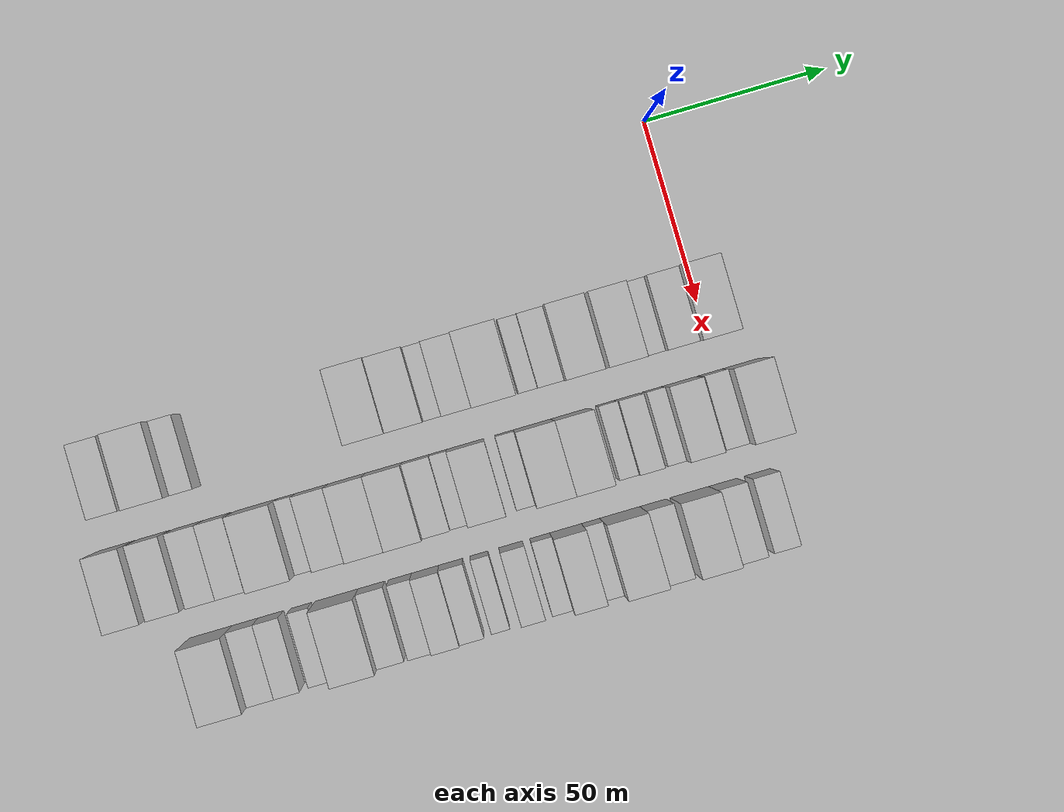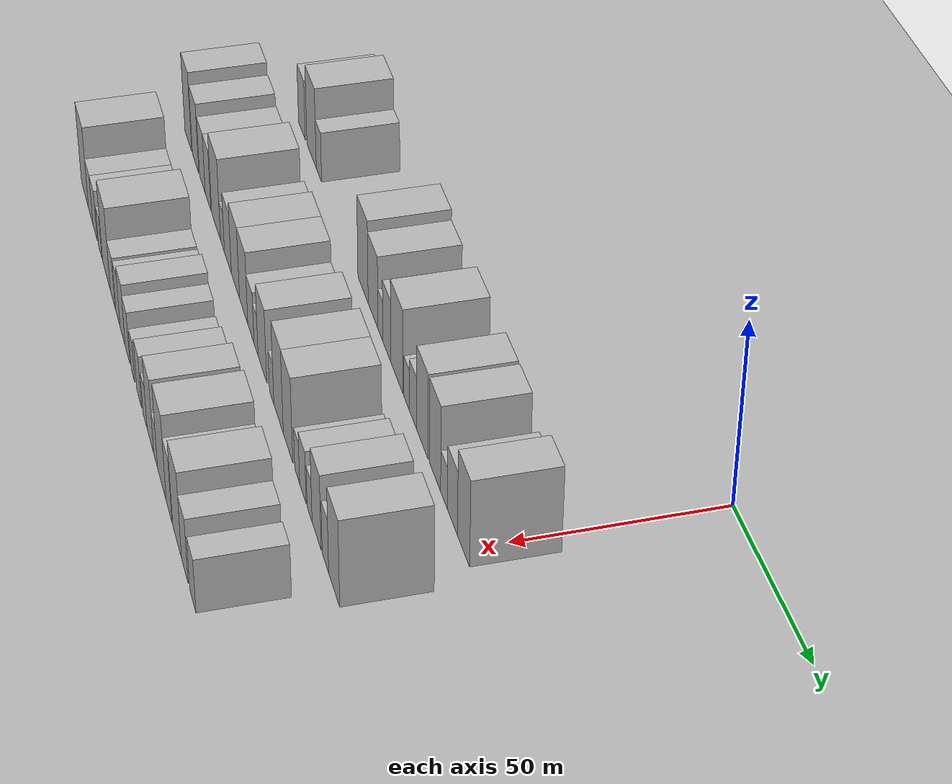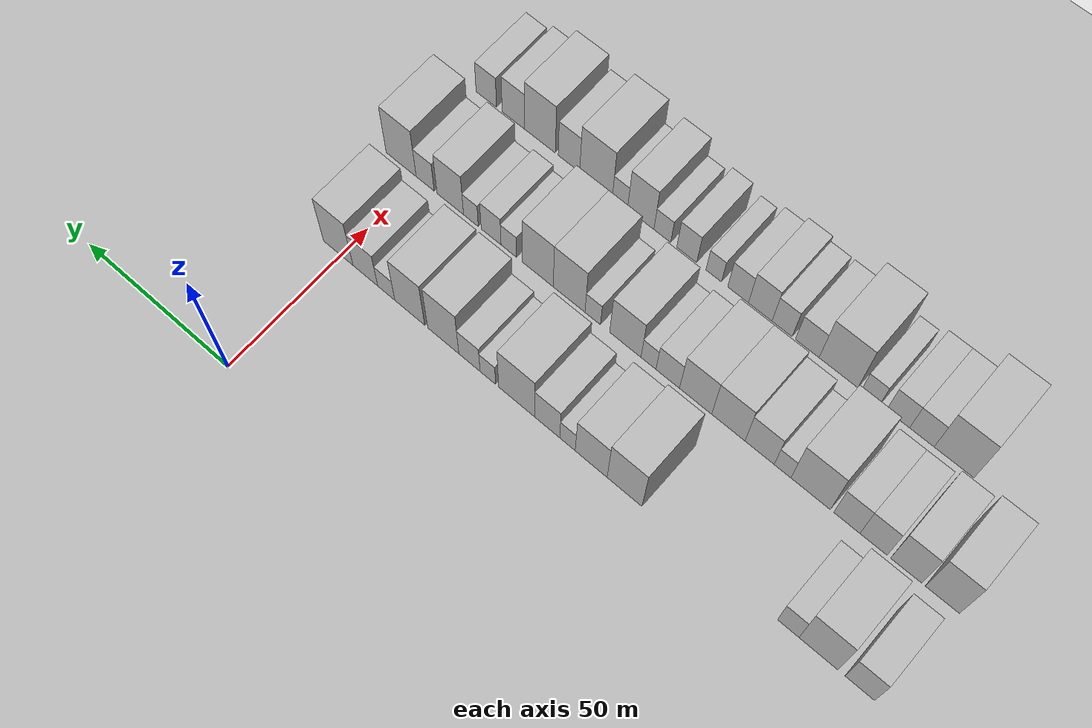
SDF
<sdf version="1.6">
 <world name="default">
  <include><name>ground_plane_1</name><uri>model://HANNAS_ground_plane</uri></include>
  <include>
   <name>ground_plane_2</name>
   <uri>model://HANNAS_ground_plane</uri>
   <pose>100 0 0  0 0 0</pose>
  </include>
  <model name="building_22">
   <static>1</static>
   <pose>50.0000 -164.0392 0 0.000000 0.000000 0.000000</pose>
   <link name="link">
    <pose>0 0 9.00 0 0 0</pose>
    <collision name="collision"><geometry><box><size>20.0000 8.3828 18.0000</size></box></geometry></collision>
    <visual name="visual">
     <cast_shadows>0</cast_shadows>
     <geometry><box><size>20.0000 8.3828 18.0000</size></box></geometry>
     <material>
      <script>
       <uri>model://HANNAS_wall/materials/scripts</uri>
       <uri>model://HANNAS_wall/materials/textures</uri>
       <name>vrc/HANNAS_wall</name>
      </script>
     </material>
    </visual>
   </link>
  </model>
  <model name="building_23">
   <static>1</static>
   <pose>50.0000 -152.2214 0 0.000000 0.000000 0.000000</pose>
   <link name="link">
    <pose>0 0 12.00 0 0 0</pose>
    <collision name="collision"><geometry><box><size>20.0000 11.2528 24.0000</size></box></geometry></collision>
    <visual name="visual">
     <cast_shadows>0</cast_shadows>
     <geometry><box><size>20.0000 11.2528 24.0000</size></box></geometry>
     <material>
      <script>
       <uri>model://HANNAS_wall/materials/scripts</uri>
       <uri>model://HANNAS_wall/materials/textures</uri>
       <name>vrc/HANNAS_wall</name>
      </script>
     </material>
    </visual>
   </link>
  </model>
  <model name="building_24">
   <static>1</static>
   <pose>50.0000 -143.4578 0 0.000000 0.000000 0.000000</pose>
   <link name="link">
    <pose>0 0 7.50 0 0 0</pose>
    <collision name="collision"><geometry><box><size>20.0000 6.2745 15.0000</size></box></geometry></collision>
    <visual name="visual">
     <cast_shadows>0</cast_shadows>
     <geometry><box><size>20.0000 6.2745 15.0000</size></box></geometry>
     <material>
      <script>
       <uri>model://HANNAS_wall/materials/scripts</uri>
       <uri>model://HANNAS_wall/materials/textures</uri>
       <name>vrc/HANNAS_wall</name>
      </script>
     </material>
    </visual>
   </link>
  </model>
  <model name="building_25">
   <static>1</static>
   <pose>50.0000 -94.0179 0 0.000000 0.000000 0.000000</pose>
   <link name="link">
    <pose>0 0 12.00 0 0 0</pose>
    <collision name="collision"><geometry><box><size>20.0000 10.8684 24.0000</size></box></geometry></collision>
    <visual name="visual">
     <cast_shadows>0</cast_shadows>
     <geometry><box><size>20.0000 10.8684 24.0000</size></box></geometry>
     <material>
      <script>
       <uri>model://HANNAS_wall/materials/scripts</uri>
       <uri>model://HANNAS_wall/materials/textures</uri>
       <name>vrc/HANNAS_wall</name>
      </script>
     </material>
    </visual>
   </link>
  </model>
  <model name="building_26">
   <static>1</static>
   <pose>50.0000 -83.5271 0 0.000000 0.000000 0.000000</pose>
   <link name="link">
    <pose>0 0 10.50 0 0 0</pose>
    <collision name="collision"><geometry><box><size>20.0000 10.1133 21.0000</size></box></geometry></collision>
    <visual name="visual">
     <cast_shadows>0</cast_shadows>
     <geometry><box><size>20.0000 10.1133 21.0000</size></box></geometry>
     <material>
      <script>
       <uri>model://HANNAS_wall/materials/scripts</uri>
       <uri>model://HANNAS_wall/materials/textures</uri>
       <name>vrc/HANNAS_wall</name>
      </script>
     </material>
    </visual>
   </link>
  </model>
  <model name="building_27">
   <static>1</static>
   <pose>50.0000 -75.9997 0 0.000000 0.000000 0.000000</pose>
   <link name="link">
    <pose>0 0 6.00 0 0 0</pose>
    <collision name="collision"><geometry><box><size>20.0000 4.9413 12.0000</size></box></geometry></collision>
    <visual name="visual">
     <cast_shadows>0</cast_shadows>
     <geometry><box><size>20.0000 4.9413 12.0000</size></box></geometry>
     <material>
      <script>
       <uri>model://HANNAS_wall/materials/scripts</uri>
       <uri>model://HANNAS_wall/materials/textures</uri>
       <name>vrc/HANNAS_wall</name>
      </script>
     </material>
    </visual>
   </link>
  </model>
  <model name="building_28">
   <static>1</static>
   <pose>50.0000 -69.5261 0 0.000000 0.000000 0.000000</pose>
   <link name="link">
    <pose>0 0 9.00 0 0 0</pose>
    <collision name="collision"><geometry><box><size>20.0000 8.0060 18.0000</size></box></geometry></collision>
    <visual name="visual">
     <cast_shadows>0</cast_shadows>
     <geometry><box><size>20.0000 8.0060 18.0000</size></box></geometry>
     <material>
      <script>
       <uri>model://HANNAS_wall/materials/scripts</uri>
       <uri>model://HANNAS_wall/materials/textures</uri>
       <name>vrc/HANNAS_wall</name>
      </script>
     </material>
    </visual>
   </link>
  </model>
  <model name="building_29">
   <static>1</static>
   <pose>50.0000 -59.6290 0 0.000000 0.000000 0.000000</pose>
   <link name="link">
    <pose>0 0 12.00 0 0 0</pose>
    <collision name="collision"><geometry><box><size>20.0000 11.7882 24.0000</size></box></geometry></collision>
    <visual name="visual">
     <cast_shadows>0</cast_shadows>
     <geometry><box><size>20.0000 11.7882 24.0000</size></box></geometry>
     <material>
      <script>
       <uri>model://HANNAS_wall/materials/scripts</uri>
       <uri>model://HANNAS_wall/materials/textures</uri>
       <name>vrc/HANNAS_wall</name>
      </script>
     </material>
    </visual>
   </link>
  </model>
  <model name="building_30">
   <static>1</static>
   <pose>50.0000 -50.1705 0 0.000000 0.000000 0.000000</pose>
   <link name="link">
    <pose>0 0 6.00 0 0 0</pose>
    <collision name="collision"><geometry><box><size>20.0000 5.1288 12.0000</size></box></geometry></collision>
    <visual name="visual">
     <cast_shadows>0</cast_shadows>
     <geometry><box><size>20.0000 5.1288 12.0000</size></box></geometry>
     <material>
      <script>
       <uri>model://HANNAS_wall/materials/scripts</uri>
       <uri>model://HANNAS_wall/materials/textures</uri>
       <name>vrc/HANNAS_wall</name>
      </script>
     </material>
    </visual>
   </link>
  </model>
  <model name="building_31">
   <static>1</static>
   <pose>50.0000 -44.0723 0 0.000000 0.000000 0.000000</pose>
   <link name="link">
    <pose>0 0 7.50 0 0 0</pose>
    <collision name="collision"><geometry><box><size>20.0000 7.0677 15.0000</size></box></geometry></collision>
    <visual name="visual">
     <cast_shadows>0</cast_shadows>
     <geometry><box><size>20.0000 7.0677 15.0000</size></box></geometry>
     <material>
      <script>
       <uri>model://HANNAS_wall/materials/scripts</uri>
       <uri>model://HANNAS_wall/materials/textures</uri>
       <name>vrc/HANNAS_wall</name>
      </script>
     </material>
    </visual>
   </link>
  </model>
  <model name="building_32">
   <static>1</static>
   <pose>50.0000 -35.3034 0 0.000000 0.000000 0.000000</pose>
   <link name="link">
    <pose>0 0 12.00 0 0 0</pose>
    <collision name="collision"><geometry><box><size>20.0000 10.4701 24.0000</size></box></geometry></collision>
    <visual name="visual">
     <cast_shadows>0</cast_shadows>
     <geometry><box><size>20.0000 10.4701 24.0000</size></box></geometry>
     <material>
      <script>
       <uri>model://HANNAS_wall/materials/scripts</uri>
       <uri>model://HANNAS_wall/materials/textures</uri>
       <name>vrc/HANNAS_wall</name>
      </script>
     </material>
    </visual>
   </link>
  </model>
  <model name="building_33">
   <static>1</static>
   <pose>50.0000 -23.9722 0 0.000000 0.000000 0.000000</pose>
   <link name="link">
    <pose>0 0 12.00 0 0 0</pose>
    <collision name="collision"><geometry><box><size>20.0000 10.1921 24.0000</size></box></geometry></collision>
    <visual name="visual">
     <cast_shadows>0</cast_shadows>
     <geometry><box><size>20.0000 10.1921 24.0000</size></box></geometry>
     <material>
      <script>
       <uri>model://HANNAS_wall/materials/scripts</uri>
       <uri>model://HANNAS_wall/materials/textures</uri>
       <name>vrc/HANNAS_wall</name>
      </script>
     </material>
    </visual>
   </link>
  </model>
  <model name="building_34">
   <static>1</static>
   <pose>50.0000 -15.9255 0 0.000000 0.000000 0.000000</pose>
   <link name="link">
    <pose>0 0 6.00 0 0 0</pose>
    <collision name="collision"><geometry><box><size>20.0000 5.9014 12.0000</size></box></geometry></collision>
    <visual name="visual">
     <cast_shadows>0</cast_shadows>
     <geometry><box><size>20.0000 5.9014 12.0000</size></box></geometry>
     <material>
      <script>
       <uri>model://HANNAS_wall/materials/scripts</uri>
       <uri>model://HANNAS_wall/materials/textures</uri>
       <name>vrc/HANNAS_wall</name>
      </script>
     </material>
    </visual>
   </link>
  </model>
  <model name="building_35">
   <static>1</static>
   <pose>50.0000 -8.6745 0 0.000000 0.000000 0.000000</pose>
   <link name="link">
    <pose>0 0 9.00 0 0 0</pose>
    <collision name="collision"><geometry><box><size>20.0000 8.6005 18.0000</size></box></geometry></collision>
    <visual name="visual">
     <cast_shadows>0</cast_shadows>
     <geometry><box><size>20.0000 8.6005 18.0000</size></box></geometry>
     <material>
      <script>
       <uri>model://HANNAS_wall/materials/scripts</uri>
       <uri>model://HANNAS_wall/materials/textures</uri>
       <name>vrc/HANNAS_wall</name>
      </script>
     </material>
    </visual>
   </link>
  </model>
  <model name="building_36">
   <static>1</static>
   <pose>50.0000 0.7981 0 0.000000 0.000000 0.000000</pose>
   <link name="link">
    <pose>0 0 12.00 0 0 0</pose>
    <collision name="collision"><geometry><box><size>20.0000 10.3448 24.0000</size></box></geometry></collision>
    <visual name="visual">
     <cast_shadows>0</cast_shadows>
     <geometry><box><size>20.0000 10.3448 24.0000</size></box></geometry>
     <material>
      <script>
       <uri>model://HANNAS_wall/materials/scripts</uri>
       <uri>model://HANNAS_wall/materials/textures</uri>
       <name>vrc/HANNAS_wall</name>
      </script>
     </material>
    </visual>
   </link>
  </model>
  <model name="building_95">
   <static>1</static>
   <pose>79.0000 -166.1555 0 0.000000 0.000000 0.000000</pose>
   <link name="link">
    <pose>0 0 12.00 0 0 0</pose>
    <collision name="collision"><geometry><box><size>20.0000 9.7648 24.0000</size></box></geometry></collision>
    <visual name="visual">
     <cast_shadows>0</cast_shadows>
     <geometry><box><size>20.0000 9.7648 24.0000</size></box></geometry>
     <material>
      <script>
       <uri>model://HANNAS_wall/materials/scripts</uri>
       <uri>model://HANNAS_wall/materials/textures</uri>
       <name>vrc/HANNAS_wall</name>
      </script>
     </material>
    </visual>
   </link>
  </model>
  <model name="building_96">
   <static>1</static>
   <pose>79.0000 -155.7565 0 0.000000 0.000000 0.000000</pose>
   <link name="link">
    <pose>0 0 10.50 0 0 0</pose>
    <collision name="collision"><geometry><box><size>20.0000 9.0333 21.0000</size></box></geometry></collision>
    <visual name="visual">
     <cast_shadows>0</cast_shadows>
     <geometry><box><size>20.0000 9.0333 21.0000</size></box></geometry>
     <material>
      <script>
       <uri>model://HANNAS_wall/materials/scripts</uri>
       <uri>model://HANNAS_wall/materials/textures</uri>
       <name>vrc/HANNAS_wall</name>
      </script>
     </material>
    </visual>
   </link>
  </model>
  <model name="building_97">
   <static>1</static>
   <pose>79.0000 -146.2524 0 0.000000 0.000000 0.000000</pose>
   <link name="link">
    <pose>0 0 9.00 0 0 0</pose>
    <collision name="collision"><geometry><box><size>20.0000 7.9749 18.0000</size></box></geometry></collision>
    <visual name="visual">
     <cast_shadows>0</cast_shadows>
     <geometry><box><size>20.0000 7.9749 18.0000</size></box></geometry>
     <material>
      <script>
       <uri>model://HANNAS_wall/materials/scripts</uri>
       <uri>model://HANNAS_wall/materials/textures</uri>
       <name>vrc/HANNAS_wall</name>
      </script>
     </material>
    </visual>
   </link>
  </model>
  <model name="building_98">
   <static>1</static>
   <pose>79.0000 -138.3795 0 0.000000 0.000000 0.000000</pose>
   <link name="link">
    <pose>0 0 9.00 0 0 0</pose>
    <collision name="collision"><geometry><box><size>20.0000 7.7707 18.0000</size></box></geometry></collision>
    <visual name="visual">
     <cast_shadows>0</cast_shadows>
     <geometry><box><size>20.0000 7.7707 18.0000</size></box></geometry>
     <material>
      <script>
       <uri>model://HANNAS_wall/materials/scripts</uri>
       <uri>model://HANNAS_wall/materials/textures</uri>
       <name>vrc/HANNAS_wall</name>
      </script>
     </material>
    </visual>
   </link>
  </model>
  <model name="building_99">
   <static>1</static>
   <pose>79.0000 -127.5687 0 0.000000 0.000000 0.000000</pose>
   <link name="link">
    <pose>0 0 12.00 0 0 0</pose>
    <collision name="collision"><geometry><box><size>20.0000 11.8510 24.0000</size></box></geometry></collision>
    <visual name="visual">
     <cast_shadows>0</cast_shadows>
     <geometry><box><size>20.0000 11.8510 24.0000</size></box></geometry>
     <material>
      <script>
       <uri>model://HANNAS_wall/materials/scripts</uri>
       <uri>model://HANNAS_wall/materials/textures</uri>
       <name>vrc/HANNAS_wall</name>
      </script>
     </material>
    </visual>
   </link>
  </model>
  <model name="building_100">
   <static>1</static>
   <pose>79.0000 -119.0986 0 0.000000 0.000000 0.000000</pose>
   <link name="link">
    <pose>0 0 6.00 0 0 0</pose>
    <collision name="collision"><geometry><box><size>20.0000 5.0892 12.0000</size></box></geometry></collision>
    <visual name="visual">
     <cast_shadows>0</cast_shadows>
     <geometry><box><size>20.0000 5.0892 12.0000</size></box></geometry>
     <material>
      <script>
       <uri>model://HANNAS_wall/materials/scripts</uri>
       <uri>model://HANNAS_wall/materials/textures</uri>
       <name>vrc/HANNAS_wall</name>
      </script>
     </material>
    </visual>
   </link>
  </model>
  <model name="building_101">
   <static>1</static>
   <pose>79.0000 -112.0847 0 0.000000 0.000000 0.000000</pose>
   <link name="link">
    <pose>0 0 9.00 0 0 0</pose>
    <collision name="collision"><geometry><box><size>20.0000 8.9385 18.0000</size></box></geometry></collision>
    <visual name="visual">
     <cast_shadows>0</cast_shadows>
     <geometry><box><size>20.0000 8.9385 18.0000</size></box></geometry>
     <material>
      <script>
       <uri>model://HANNAS_wall/materials/scripts</uri>
       <uri>model://HANNAS_wall/materials/textures</uri>
       <name>vrc/HANNAS_wall</name>
      </script>
     </material>
    </visual>
   </link>
  </model>
  <model name="building_102">
   <static>1</static>
   <pose>79.0000 -102.4445 0 0.000000 0.000000 0.000000</pose>
   <link name="link">
    <pose>0 0 10.50 0 0 0</pose>
    <collision name="collision"><geometry><box><size>20.0000 10.3420 21.0000</size></box></geometry></collision>
    <visual name="visual">
     <cast_shadows>0</cast_shadows>
     <geometry><box><size>20.0000 10.3420 21.0000</size></box></geometry>
     <material>
      <script>
       <uri>model://HANNAS_wall/materials/scripts</uri>
       <uri>model://HANNAS_wall/materials/textures</uri>
       <name>vrc/HANNAS_wall</name>
      </script>
     </material>
    </visual>
   </link>
  </model>
  <model name="building_103">
   <static>1</static>
   <pose>79.0000 -92.2135 0 0.000000 0.000000 0.000000</pose>
   <link name="link">
    <pose>0 0 10.50 0 0 0</pose>
    <collision name="collision"><geometry><box><size>20.0000 10.1200 21.0000</size></box></geometry></collision>
    <visual name="visual">
     <cast_shadows>0</cast_shadows>
     <geometry><box><size>20.0000 10.1200 21.0000</size></box></geometry>
     <material>
      <script>
       <uri>model://HANNAS_wall/materials/scripts</uri>
       <uri>model://HANNAS_wall/materials/textures</uri>
       <name>vrc/HANNAS_wall</name>
      </script>
     </material>
    </visual>
   </link>
  </model>
  <model name="building_104">
   <static>1</static>
   <pose>79.0000 -83.4157 0 0.000000 0.000000 0.000000</pose>
   <link name="link">
    <pose>0 0 7.50 0 0 0</pose>
    <collision name="collision"><geometry><box><size>20.0000 7.4757 15.0000</size></box></geometry></collision>
    <visual name="visual">
     <cast_shadows>0</cast_shadows>
     <geometry><box><size>20.0000 7.4757 15.0000</size></box></geometry>
     <material>
      <script>
       <uri>model://HANNAS_wall/materials/scripts</uri>
       <uri>model://HANNAS_wall/materials/textures</uri>
       <name>vrc/HANNAS_wall</name>
      </script>
     </material>
    </visual>
   </link>
  </model>
  <model name="building_105">
   <static>1</static>
   <pose>79.0000 -77.2676 0 0.000000 0.000000 0.000000</pose>
   <link name="link">
    <pose>0 0 6.00 0 0 0</pose>
    <collision name="collision"><geometry><box><size>20.0000 4.8206 12.0000</size></box></geometry></collision>
    <visual name="visual">
     <cast_shadows>0</cast_shadows>
     <geometry><box><size>20.0000 4.8206 12.0000</size></box></geometry>
     <material>
      <script>
       <uri>model://HANNAS_wall/materials/scripts</uri>
       <uri>model://HANNAS_wall/materials/textures</uri>
       <name>vrc/HANNAS_wall</name>
      </script>
     </material>
    </visual>
   </link>
  </model>
  <model name="building_106">
   <static>1</static>
   <pose>79.0000 -69.7898 0 0.000000 0.000000 0.000000</pose>
   <link name="link">
    <pose>0 0 10.50 0 0 0</pose>
    <collision name="collision"><geometry><box><size>20.0000 10.1350 21.0000</size></box></geometry></collision>
    <visual name="visual">
     <cast_shadows>0</cast_shadows>
     <geometry><box><size>20.0000 10.1350 21.0000</size></box></geometry>
     <material>
      <script>
       <uri>model://HANNAS_wall/materials/scripts</uri>
       <uri>model://HANNAS_wall/materials/textures</uri>
       <name>vrc/HANNAS_wall</name>
      </script>
     </material>
    </visual>
   </link>
  </model>
  <model name="building_107">
   <static>1</static>
   <pose>79.0000 -59.1889 0 0.000000 0.000000 0.000000</pose>
   <link name="link">
    <pose>0 0 6.00 0 0 0</pose>
    <collision name="collision"><geometry><box><size>20.0000 5.0666 12.0000</size></box></geometry></collision>
    <visual name="visual">
     <cast_shadows>0</cast_shadows>
     <geometry><box><size>20.0000 5.0666 12.0000</size></box></geometry>
     <material>
      <script>
       <uri>model://HANNAS_wall/materials/scripts</uri>
       <uri>model://HANNAS_wall/materials/textures</uri>
       <name>vrc/HANNAS_wall</name>
      </script>
     </material>
    </visual>
   </link>
  </model>
  <model name="building_108">
   <static>1</static>
   <pose>79.0000 -51.3912 0 0.000000 0.000000 0.000000</pose>
   <link name="link">
    <pose>0 0 12.00 0 0 0</pose>
    <collision name="collision"><geometry><box><size>20.0000 10.5289 24.0000</size></box></geometry></collision>
    <visual name="visual">
     <cast_shadows>0</cast_shadows>
     <geometry><box><size>20.0000 10.5289 24.0000</size></box></geometry>
     <material>
      <script>
       <uri>model://HANNAS_wall/materials/scripts</uri>
       <uri>model://HANNAS_wall/materials/textures</uri>
       <name>vrc/HANNAS_wall</name>
      </script>
     </material>
    </visual>
   </link>
  </model>
  <model name="building_109">
   <static>1</static>
   <pose>79.0000 -40.9770 0 0.000000 0.000000 0.000000</pose>
   <link name="link">
    <pose>0 0 12.00 0 0 0</pose>
    <collision name="collision"><geometry><box><size>20.0000 10.2996 24.0000</size></box></geometry></collision>
    <visual name="visual">
     <cast_shadows>0</cast_shadows>
     <geometry><box><size>20.0000 10.2996 24.0000</size></box></geometry>
     <material>
      <script>
       <uri>model://HANNAS_wall/materials/scripts</uri>
       <uri>model://HANNAS_wall/materials/textures</uri>
       <name>vrc/HANNAS_wall</name>
      </script>
     </material>
    </visual>
   </link>
  </model>
  <model name="building_110">
   <static>1</static>
   <pose>79.0000 -31.1936 0 0.000000 0.000000 0.000000</pose>
   <link name="link">
    <pose>0 0 6.00 0 0 0</pose>
    <collision name="collision"><geometry><box><size>20.0000 5.2672 12.0000</size></box></geometry></collision>
    <visual name="visual">
     <cast_shadows>0</cast_shadows>
     <geometry><box><size>20.0000 5.2672 12.0000</size></box></geometry>
     <material>
      <script>
       <uri>model://HANNAS_wall/materials/scripts</uri>
       <uri>model://HANNAS_wall/materials/textures</uri>
       <name>vrc/HANNAS_wall</name>
      </script>
     </material>
    </visual>
   </link>
  </model>
  <model name="building_111">
   <static>1</static>
   <pose>79.0000 -25.1725 0 0.000000 0.000000 0.000000</pose>
   <link name="link">
    <pose>0 0 7.50 0 0 0</pose>
    <collision name="collision"><geometry><box><size>20.0000 6.7749 15.0000</size></box></geometry></collision>
    <visual name="visual">
     <cast_shadows>0</cast_shadows>
     <geometry><box><size>20.0000 6.7749 15.0000</size></box></geometry>
     <material>
      <script>
       <uri>model://HANNAS_wall/materials/scripts</uri>
       <uri>model://HANNAS_wall/materials/textures</uri>
       <name>vrc/HANNAS_wall</name>
      </script>
     </material>
    </visual>
   </link>
  </model>
  <model name="building_112">
   <static>1</static>
   <pose>79.0000 -18.2454 0 0.000000 0.000000 0.000000</pose>
   <link name="link">
    <pose>0 0 6.00 0 0 0</pose>
    <collision name="collision"><geometry><box><size>20.0000 5.0794 12.0000</size></box></geometry></collision>
    <visual name="visual">
     <cast_shadows>0</cast_shadows>
     <geometry><box><size>20.0000 5.0794 12.0000</size></box></geometry>
     <material>
      <script>
       <uri>model://HANNAS_wall/materials/scripts</uri>
       <uri>model://HANNAS_wall/materials/textures</uri>
       <name>vrc/HANNAS_wall</name>
      </script>
     </material>
    </visual>
   </link>
  </model>
  <model name="building_113">
   <static>1</static>
   <pose>79.0000 -11.0957 0 0.000000 0.000000 0.000000</pose>
   <link name="link">
    <pose>0 0 10.50 0 0 0</pose>
    <collision name="collision"><geometry><box><size>20.0000 9.2200 21.0000</size></box></geometry></collision>
    <visual name="visual">
     <cast_shadows>0</cast_shadows>
     <geometry><box><size>20.0000 9.2200 21.0000</size></box></geometry>
     <material>
      <script>
       <uri>model://HANNAS_wall/materials/scripts</uri>
       <uri>model://HANNAS_wall/materials/textures</uri>
       <name>vrc/HANNAS_wall</name>
      </script>
     </material>
    </visual>
   </link>
  </model>
  <model name="building_114">
   <static>1</static>
   <pose>79.0000 -2.3140 0 0.000000 0.000000 0.000000</pose>
   <link name="link">
    <pose>0 0 7.50 0 0 0</pose>
    <collision name="collision"><geometry><box><size>20.0000 6.3435 15.0000</size></box></geometry></collision>
    <visual name="visual">
     <cast_shadows>0</cast_shadows>
     <geometry><box><size>20.0000 6.3435 15.0000</size></box></geometry>
     <material>
      <script>
       <uri>model://HANNAS_wall/materials/scripts</uri>
       <uri>model://HANNAS_wall/materials/textures</uri>
       <name>vrc/HANNAS_wall</name>
      </script>
     </material>
    </visual>
   </link>
  </model>
  <model name="building_115">
   <static>1</static>
   <pose>79.0000 6.1742 0 0.000000 0.000000 0.000000</pose>
   <link name="link">
    <pose>0 0 12.00 0 0 0</pose>
    <collision name="collision"><geometry><box><size>20.0000 10.6329 24.0000</size></box></geometry></collision>
    <visual name="visual">
     <cast_shadows>0</cast_shadows>
     <geometry><box><size>20.0000 10.6329 24.0000</size></box></geometry>
     <material>
      <script>
       <uri>model://HANNAS_wall/materials/scripts</uri>
       <uri>model://HANNAS_wall/materials/textures</uri>
       <name>vrc/HANNAS_wall</name>
      </script>
     </material>
    </visual>
   </link>
  </model>
  <model name="building_171">
   <static>1</static>
   <pose>108.0000 -148.6491 0 0.000000 0.000000 0.000000</pose>
   <link name="link">
    <pose>0 0 12.00 0 0 0</pose>
    <collision name="collision"><geometry><box><size>20.0000 11.7622 24.0000</size></box></geometry></collision>
    <visual name="visual">
     <cast_shadows>0</cast_shadows>
     <geometry><box><size>20.0000 11.7622 24.0000</size></box></geometry>
     <material>
      <script>
       <uri>model://HANNAS_wall/materials/scripts</uri>
       <uri>model://HANNAS_wall/materials/textures</uri>
       <name>vrc/HANNAS_wall</name>
      </script>
     </material>
    </visual>
   </link>
  </model>
  <model name="building_172">
   <static>1</static>
   <pose>108.0000 -139.1020 0 0.000000 0.000000 0.000000</pose>
   <link name="link">
    <pose>0 0 7.50 0 0 0</pose>
    <collision name="collision"><geometry><box><size>20.0000 7.3321 15.0000</size></box></geometry></collision>
    <visual name="visual">
     <cast_shadows>0</cast_shadows>
     <geometry><box><size>20.0000 7.3321 15.0000</size></box></geometry>
     <material>
      <script>
       <uri>model://HANNAS_wall/materials/scripts</uri>
       <uri>model://HANNAS_wall/materials/textures</uri>
       <name>vrc/HANNAS_wall</name>
      </script>
     </material>
    </visual>
   </link>
  </model>
  <model name="building_173">
   <static>1</static>
   <pose>108.0000 -131.9674 0 0.000000 0.000000 0.000000</pose>
   <link name="link">
    <pose>0 0 7.50 0 0 0</pose>
    <collision name="collision"><geometry><box><size>20.0000 6.9371 15.0000</size></box></geometry></collision>
    <visual name="visual">
     <cast_shadows>0</cast_shadows>
     <geometry><box><size>20.0000 6.9371 15.0000</size></box></geometry>
     <material>
      <script>
       <uri>model://HANNAS_wall/materials/scripts</uri>
       <uri>model://HANNAS_wall/materials/textures</uri>
       <name>vrc/HANNAS_wall</name>
      </script>
     </material>
    </visual>
   </link>
  </model>
  <model name="building_174">
   <static>1</static>
   <pose>108.0000 -123.6573 0 0.000000 0.000000 0.000000</pose>
   <link name="link">
    <pose>0 0 6.00 0 0 0</pose>
    <collision name="collision"><geometry><box><size>20.0000 5.6830 12.0000</size></box></geometry></collision>
    <visual name="visual">
     <cast_shadows>0</cast_shadows>
     <geometry><box><size>20.0000 5.6830 12.0000</size></box></geometry>
     <material>
      <script>
       <uri>model://HANNAS_wall/materials/scripts</uri>
       <uri>model://HANNAS_wall/materials/textures</uri>
       <name>vrc/HANNAS_wall</name>
      </script>
     </material>
    </visual>
   </link>
  </model>
  <model name="building_175">
   <static>1</static>
   <pose>108.0000 -113.8347 0 0.000000 0.000000 0.000000</pose>
   <link name="link">
    <pose>0 0 12.00 0 0 0</pose>
    <collision name="collision"><geometry><box><size>20.0000 11.9623 24.0000</size></box></geometry></collision>
    <visual name="visual">
     <cast_shadows>0</cast_shadows>
     <geometry><box><size>20.0000 11.9623 24.0000</size></box></geometry>
     <material>
      <script>
       <uri>model://HANNAS_wall/materials/scripts</uri>
       <uri>model://HANNAS_wall/materials/textures</uri>
       <name>vrc/HANNAS_wall</name>
      </script>
     </material>
    </visual>
   </link>
  </model>
  <model name="building_176">
   <static>1</static>
   <pose>108.0000 -104.1517 0 0.000000 0.000000 0.000000</pose>
   <link name="link">
    <pose>0 0 7.50 0 0 0</pose>
    <collision name="collision"><geometry><box><size>20.0000 7.4037 15.0000</size></box></geometry></collision>
    <visual name="visual">
     <cast_shadows>0</cast_shadows>
     <geometry><box><size>20.0000 7.4037 15.0000</size></box></geometry>
     <material>
      <script>
       <uri>model://HANNAS_wall/materials/scripts</uri>
       <uri>model://HANNAS_wall/materials/textures</uri>
       <name>vrc/HANNAS_wall</name>
      </script>
     </material>
    </visual>
   </link>
  </model>
  <model name="building_177">
   <static>1</static>
   <pose>108.0000 -96.2827 0 0.000000 0.000000 0.000000</pose>
   <link name="link">
    <pose>0 0 7.50 0 0 0</pose>
    <collision name="collision"><geometry><box><size>20.0000 6.3344 15.0000</size></box></geometry></collision>
    <visual name="visual">
     <cast_shadows>0</cast_shadows>
     <geometry><box><size>20.0000 6.3344 15.0000</size></box></geometry>
     <material>
      <script>
       <uri>model://HANNAS_wall/materials/scripts</uri>
       <uri>model://HANNAS_wall/materials/textures</uri>
       <name>vrc/HANNAS_wall</name>
      </script>
     </material>
    </visual>
   </link>
  </model>
  <model name="building_178">
   <static>1</static>
   <pose>108.0000 -89.3599 0 0.000000 0.000000 0.000000</pose>
   <link name="link">
    <pose>0 0 9.00 0 0 0</pose>
    <collision name="collision"><geometry><box><size>20.0000 7.5112 18.0000</size></box></geometry></collision>
    <visual name="visual">
     <cast_shadows>0</cast_shadows>
     <geometry><box><size>20.0000 7.5112 18.0000</size></box></geometry>
     <material>
      <script>
       <uri>model://HANNAS_wall/materials/scripts</uri>
       <uri>model://HANNAS_wall/materials/textures</uri>
       <name>vrc/HANNAS_wall</name>
      </script>
     </material>
    </visual>
   </link>
  </model>
  <model name="building_179">
   <static>1</static>
   <pose>108.0000 -82.2894 0 0.000000 0.000000 0.000000</pose>
   <link name="link">
    <pose>0 0 7.50 0 0 0</pose>
    <collision name="collision"><geometry><box><size>20.0000 6.6297 15.0000</size></box></geometry></collision>
    <visual name="visual">
     <cast_shadows>0</cast_shadows>
     <geometry><box><size>20.0000 6.6297 15.0000</size></box></geometry>
     <material>
      <script>
       <uri>model://HANNAS_wall/materials/scripts</uri>
       <uri>model://HANNAS_wall/materials/textures</uri>
       <name>vrc/HANNAS_wall</name>
      </script>
     </material>
    </visual>
   </link>
  </model>
  <model name="building_180">
   <static>1</static>
   <pose>108.0000 -74.4618 0 0.000000 0.000000 0.000000</pose>
   <link name="link">
    <pose>0 0 6.00 0 0 0</pose>
    <collision name="collision"><geometry><box><size>20.0000 5.0254 12.0000</size></box></geometry></collision>
    <visual name="visual">
     <cast_shadows>0</cast_shadows>
     <geometry><box><size>20.0000 5.0254 12.0000</size></box></geometry>
     <material>
      <script>
       <uri>model://HANNAS_wall/materials/scripts</uri>
       <uri>model://HANNAS_wall/materials/textures</uri>
       <name>vrc/HANNAS_wall</name>
      </script>
     </material>
    </visual>
   </link>
  </model>
  <model name="building_181">
   <static>1</static>
   <pose>108.0000 -65.6889 0 0.000000 0.000000 0.000000</pose>
   <link name="link">
    <pose>0 0 7.50 0 0 0</pose>
    <collision name="collision"><geometry><box><size>20.0000 6.5204 15.0000</size></box></geometry></collision>
    <visual name="visual">
     <cast_shadows>0</cast_shadows>
     <geometry><box><size>20.0000 6.5204 15.0000</size></box></geometry>
     <material>
      <script>
       <uri>model://HANNAS_wall/materials/scripts</uri>
       <uri>model://HANNAS_wall/materials/textures</uri>
       <name>vrc/HANNAS_wall</name>
      </script>
     </material>
    </visual>
   </link>
  </model>
  <model name="building_182">
   <static>1</static>
   <pose>108.0000 -57.6493 0 0.000000 0.000000 0.000000</pose>
   <link name="link">
    <pose>0 0 6.00 0 0 0</pose>
    <collision name="collision"><geometry><box><size>20.0000 5.5589 12.0000</size></box></geometry></collision>
    <visual name="visual">
     <cast_shadows>0</cast_shadows>
     <geometry><box><size>20.0000 5.5589 12.0000</size></box></geometry>
     <material>
      <script>
       <uri>model://HANNAS_wall/materials/scripts</uri>
       <uri>model://HANNAS_wall/materials/textures</uri>
       <name>vrc/HANNAS_wall</name>
      </script>
     </material>
    </visual>
   </link>
  </model>
  <model name="building_183">
   <static>1</static>
   <pose>108.0000 -50.4737 0 0.000000 0.000000 0.000000</pose>
   <link name="link">
    <pose>0 0 10.50 0 0 0</pose>
    <collision name="collision"><geometry><box><size>20.0000 8.7923 21.0000</size></box></geometry></collision>
    <visual name="visual">
     <cast_shadows>0</cast_shadows>
     <geometry><box><size>20.0000 8.7923 21.0000</size></box></geometry>
     <material>
      <script>
       <uri>model://HANNAS_wall/materials/scripts</uri>
       <uri>model://HANNAS_wall/materials/textures</uri>
       <name>vrc/HANNAS_wall</name>
      </script>
     </material>
    </visual>
   </link>
  </model>
  <model name="building_184">
   <static>1</static>
   <pose>108.0000 -43.5324 0 0.000000 0.000000 0.000000</pose>
   <link name="link">
    <pose>0 0 6.00 0 0 0</pose>
    <collision name="collision"><geometry><box><size>20.0000 5.0905 12.0000</size></box></geometry></collision>
    <visual name="visual">
     <cast_shadows>0</cast_shadows>
     <geometry><box><size>20.0000 5.0905 12.0000</size></box></geometry>
     <material>
      <script>
       <uri>model://HANNAS_wall/materials/scripts</uri>
       <uri>model://HANNAS_wall/materials/textures</uri>
       <name>vrc/HANNAS_wall</name>
      </script>
     </material>
    </visual>
   </link>
  </model>
  <model name="building_185">
   <static>1</static>
   <pose>108.0000 -35.4392 0 0.000000 0.000000 0.000000</pose>
   <link name="link">
    <pose>0 0 12.00 0 0 0</pose>
    <collision name="collision"><geometry><box><size>20.0000 11.0958 24.0000</size></box></geometry></collision>
    <visual name="visual">
     <cast_shadows>0</cast_shadows>
     <geometry><box><size>20.0000 11.0958 24.0000</size></box></geometry>
     <material>
      <script>
       <uri>model://HANNAS_wall/materials/scripts</uri>
       <uri>model://HANNAS_wall/materials/textures</uri>
       <name>vrc/HANNAS_wall</name>
      </script>
     </material>
    </visual>
   </link>
  </model>
  <model name="building_186">
   <static>1</static>
   <pose>108.0000 -26.2146 0 0.000000 0.000000 0.000000</pose>
   <link name="link">
    <pose>0 0 9.00 0 0 0</pose>
    <collision name="collision"><geometry><box><size>20.0000 7.3534 18.0000</size></box></geometry></collision>
    <visual name="visual">
     <cast_shadows>0</cast_shadows>
     <geometry><box><size>20.0000 7.3534 18.0000</size></box></geometry>
     <material>
      <script>
       <uri>model://HANNAS_wall/materials/scripts</uri>
       <uri>model://HANNAS_wall/materials/textures</uri>
       <name>vrc/HANNAS_wall</name>
      </script>
     </material>
    </visual>
   </link>
  </model>
  <model name="building_187">
   <static>1</static>
   <pose>108.0000 -16.1700 0 0.000000 0.000000 0.000000</pose>
   <link name="link">
    <pose>0 0 12.00 0 0 0</pose>
    <collision name="collision"><geometry><box><size>20.0000 10.7357 24.0000</size></box></geometry></collision>
    <visual name="visual">
     <cast_shadows>0</cast_shadows>
     <geometry><box><size>20.0000 10.7357 24.0000</size></box></geometry>
     <material>
      <script>
       <uri>model://HANNAS_wall/materials/scripts</uri>
       <uri>model://HANNAS_wall/materials/textures</uri>
       <name>vrc/HANNAS_wall</name>
      </script>
     </material>
    </visual>
   </link>
  </model>
  <model name="building_188">
   <static>1</static>
   <pose>108.0000 -6.9068 0 0.000000 0.000000 0.000000</pose>
   <link name="link">
    <pose>0 0 9.00 0 0 0</pose>
    <collision name="collision"><geometry><box><size>20.0000 7.7908 18.0000</size></box></geometry></collision>
    <visual name="visual">
     <cast_shadows>0</cast_shadows>
     <geometry><box><size>20.0000 7.7908 18.0000</size></box></geometry>
     <material>
      <script>
       <uri>model://HANNAS_wall/materials/scripts</uri>
       <uri>model://HANNAS_wall/materials/textures</uri>
       <name>vrc/HANNAS_wall</name>
      </script>
     </material>
    </visual>
   </link>
  </model>
  <model name="building_189">
   <static>1</static>
   <pose>108.0000 2.6083 0 0.000000 0.000000 0.000000</pose>
   <link name="link">
    <pose>0 0 7.50 0 0 0</pose>
    <collision name="collision"><geometry><box><size>20.0000 7.2395 15.0000</size></box></geometry></collision>
    <visual name="visual">
     <cast_shadows>0</cast_shadows>
     <geometry><box><size>20.0000 7.2395 15.0000</size></box></geometry>
     <material>
      <script>
       <uri>model://HANNAS_wall/materials/scripts</uri>
       <uri>model://HANNAS_wall/materials/textures</uri>
       <name>vrc/HANNAS_wall</name>
      </script>
     </material>
    </visual>
   </link>
  </model>
 </world>
</sdf>
